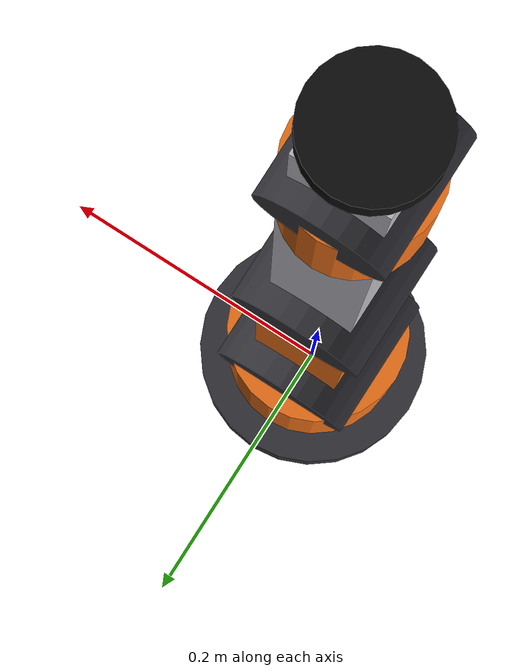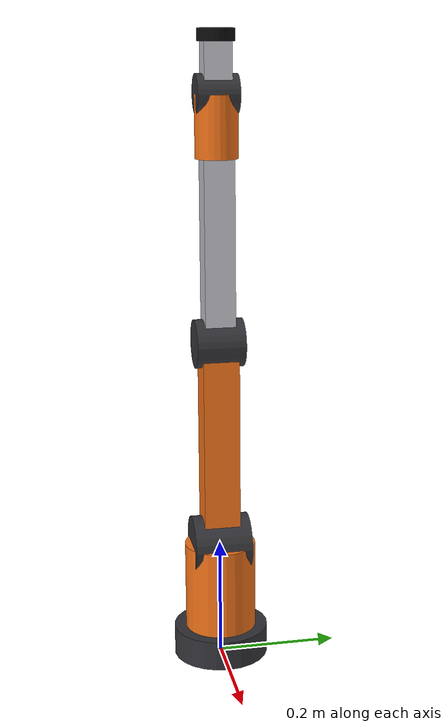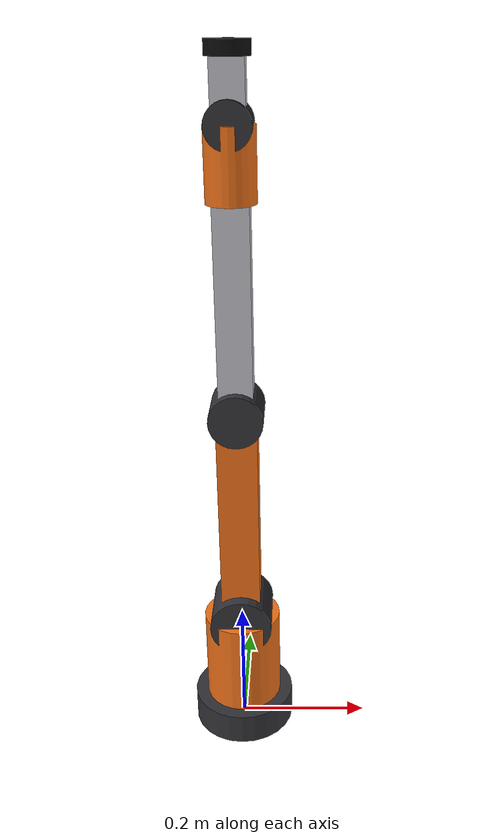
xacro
<?xml version="1.0"?>
<robot xmlns:xacro="http://www.ros.org/wiki/xacro" name="brazo">

  <!-- ===================== Argumentos ===================== -->
  <xacro:arg name="prefijo"               default=""/>
  <xacro:arg name="modo_hardware"         default="mock"/>
  <xacro:arg name="puerto_serie"          default="/dev/ttyUSB0"/>
  <xacro:arg name="baudios"               default="115200"/>
  <xacro:arg name="archivo_controladores" default=""/>

  <!-- ===================== Inclusión de las piezas ===================== -->
  <xacro:include filename="$(find brazo_description)/urdf/brazo_macro.xacro"/>
  <xacro:include filename="$(find brazo_description)/urdf/brazo.ros2_control.xacro"/>
  <xacro:include filename="$(find brazo_description)/urdf/brazo.gazebo.xacro"/>

  <!-- ===================== Mundo =====================
       Eslabón fijo de referencia. Gazebo y MoveIt lo usan como origen global. -->
  <link name="world"/>

  <!-- ===================== Brazo ===================== -->
  <xacro:brazo_rollbot prefijo="$(arg prefijo)" padre="world">
    <origin xyz="0 0 0" rpy="0 0 0"/>
  </xacro:brazo_rollbot>

  <!-- ===================== ros2_control ===================== -->
  <xacro:brazo_ros2_control
      prefijo="$(arg prefijo)"
      modo="$(arg modo_hardware)"
      puerto_serie="$(arg puerto_serie)"
      baudios="$(arg baudios)"/>

  <!-- ===================== Gazebo (solo si se simula) ===================== -->
  <xacro:if value="${'$(arg modo_hardware)' == 'gazebo'}">
    <xacro:brazo_gazebo prefijo="$(arg prefijo)"
                        archivo_controladores="$(arg archivo_controladores)"/>
  </xacro:if>

</robot>

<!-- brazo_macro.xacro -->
<robot xmlns:xacro="http://www.ros.org/wiki/xacro">

  <xacro:include filename="$(find brazo_description)/urdf/brazo_propiedades.xacro"/>
  <xacro:include filename="$(find brazo_description)/urdf/inercias.xacro"/>
  <xacro:include filename="$(find brazo_description)/urdf/materiales.xacro"/>

  <!--
    Macro auxiliar: dibuja un "cubo de motor" (cilindro tumbado en Y) en una
    articulación. Es solo estético; no afecta a la cinemática.
  -->
  <xacro:macro name="carcasa_motor" params="radio largo color">
    <visual>
      <origin xyz="0 0 0" rpy="${pi/2} 0 0"/>
      <geometry><cylinder radius="${radio}" length="${largo}"/></geometry>
      <material name="${color}"/>
    </visual>
  </xacro:macro>

  <xacro:macro name="brazo_rollbot" params="prefijo:='' padre *origen">

    <!-- ===================== Unión fija padre -> base ===================== -->
    <joint name="${prefijo}base_joint" type="fixed">
      <xacro:insert_block name="origen"/>
      <parent link="${padre}"/>
      <child link="${prefijo}base_link"/>
    </joint>

    <!-- ===================== BASE ===================== -->
    <link name="${prefijo}base_link">
      <visual>
        <origin xyz="0 0 ${base_altura/2}" rpy="0 0 0"/>
        <geometry><cylinder radius="${base_radio}" length="${base_altura}"/></geometry>
        <material name="gris_oscuro"/>
      </visual>
      <collision>
        <origin xyz="0 0 ${base_altura/2}" rpy="0 0 0"/>
        <geometry><cylinder radius="${base_radio}" length="${base_altura}"/></geometry>
      </collision>
      <xacro:inercia_cilindro masa="${base_masa}" radio="${base_radio}"
                              altura="${base_altura}" z="${base_altura/2}"/>
    </link>

    <!-- ===================== JOINT 1: giro de la torre (eje Z) ===================== -->
    <joint name="${prefijo}joint_1" type="revolute">
      <parent link="${prefijo}base_link"/>
      <child  link="${prefijo}link_1"/>
      <origin xyz="0 0 ${base_altura}" rpy="0 0 0"/>
      <axis xyz="0 0 1"/>
      <limit lower="${j1_min}" upper="${j1_max}" velocity="${vel_ejes_grandes}" effort="${esfuerzo_grande}"/>
      <dynamics damping="${amortiguamiento}" friction="${rozamiento}"/>
    </joint>

    <link name="${prefijo}link_1">
      <visual>
        <origin xyz="0 0 ${l1_altura/2}" rpy="0 0 0"/>
        <geometry><cylinder radius="${l1_radio}" length="${l1_altura}"/></geometry>
        <material name="naranja"/>
      </visual>
      <collision>
        <origin xyz="0 0 ${l1_altura/2}" rpy="0 0 0"/>
        <geometry><cylinder radius="${l1_radio}" length="${l1_altura}"/></geometry>
      </collision>
      <xacro:inercia_cilindro masa="${l1_masa}" radio="${l1_radio}"
                              altura="${l1_altura}" z="${l1_altura/2}"/>
    </link>

    <!-- ===================== JOINT 2: hombro (eje Y) ===================== -->
    <joint name="${prefijo}joint_2" type="revolute">
      <parent link="${prefijo}link_1"/>
      <child  link="${prefijo}link_2"/>
      <origin xyz="0 0 ${l1_altura}" rpy="0 0 0"/>
      <axis xyz="0 1 0"/>
      <limit lower="${j2_min}" upper="${j2_max}" velocity="${vel_ejes_grandes}" effort="${esfuerzo_grande}"/>
      <dynamics damping="${amortiguamiento}" friction="${rozamiento}"/>
    </joint>

    <link name="${prefijo}link_2">
      <!-- Carcasa del motor del hombro -->
      <xacro:carcasa_motor radio="${l2_ancho*0.8}" largo="${l2_ancho*1.6}" color="gris_oscuro"/>
      <visual>
        <origin xyz="0 0 ${l2_largo/2}" rpy="0 0 0"/>
        <geometry><box size="${l2_ancho} ${l2_ancho} ${l2_largo}"/></geometry>
        <material name="naranja"/>
      </visual>
      <collision>
        <origin xyz="0 0 ${l2_largo/2}" rpy="0 0 0"/>
        <geometry><box size="${l2_ancho} ${l2_ancho} ${l2_largo}"/></geometry>
      </collision>
      <xacro:inercia_caja masa="${l2_masa}" x="${l2_ancho}" y="${l2_ancho}"
                          z="${l2_largo}" oz="${l2_largo/2}"/>
    </link>

    <!-- ===================== JOINT 3: codo (eje Y) ===================== -->
    <joint name="${prefijo}joint_3" type="revolute">
      <parent link="${prefijo}link_2"/>
      <child  link="${prefijo}link_3"/>
      <origin xyz="0 0 ${l2_largo}" rpy="0 0 0"/>
      <axis xyz="0 1 0"/>
      <limit lower="${j3_min}" upper="${j3_max}" velocity="${vel_ejes_grandes}" effort="${esfuerzo_grande}"/>
      <dynamics damping="${amortiguamiento}" friction="${rozamiento}"/>
    </joint>

    <link name="${prefijo}link_3">
      <xacro:carcasa_motor radio="${l3_ancho*0.8}" largo="${l3_ancho*1.6}" color="gris_oscuro"/>
      <visual>
        <origin xyz="0 0 ${l3_largo/2}" rpy="0 0 0"/>
        <geometry><box size="${l3_ancho} ${l3_ancho} ${l3_largo}"/></geometry>
        <material name="gris_claro"/>
      </visual>
      <collision>
        <origin xyz="0 0 ${l3_largo/2}" rpy="0 0 0"/>
        <geometry><box size="${l3_ancho} ${l3_ancho} ${l3_largo}"/></geometry>
      </collision>
      <xacro:inercia_caja masa="${l3_masa}" x="${l3_ancho}" y="${l3_ancho}"
                          z="${l3_largo}" oz="${l3_largo/2}"/>
    </link>

    <!-- ===================== JOINT 4: giro de muñeca (eje Z) ===================== -->
    <joint name="${prefijo}joint_4" type="revolute">
      <parent link="${prefijo}link_3"/>
      <child  link="${prefijo}link_4"/>
      <origin xyz="0 0 ${l3_largo}" rpy="0 0 0"/>
      <axis xyz="0 0 1"/>
      <limit lower="${j4_min}" upper="${j4_max}" velocity="${vel_ejes_muneca}" effort="${esfuerzo_muneca}"/>
      <dynamics damping="${amortiguamiento}" friction="${rozamiento}"/>
    </joint>

    <link name="${prefijo}link_4">
      <visual>
        <origin xyz="0 0 ${l4_altura/2}" rpy="0 0 0"/>
        <geometry><cylinder radius="${l4_radio}" length="${l4_altura}"/></geometry>
        <material name="naranja"/>
      </visual>
      <collision>
        <origin xyz="0 0 ${l4_altura/2}" rpy="0 0 0"/>
        <geometry><cylinder radius="${l4_radio}" length="${l4_altura}"/></geometry>
      </collision>
      <xacro:inercia_cilindro masa="${l4_masa}" radio="${l4_radio}"
                              altura="${l4_altura}" z="${l4_altura/2}"/>
    </link>

    <!-- ===================== JOINT 5: cabeceo de muñeca (eje Y) ===================== -->
    <joint name="${prefijo}joint_5" type="revolute">
      <parent link="${prefijo}link_4"/>
      <child  link="${prefijo}link_5"/>
      <origin xyz="0 0 ${l4_altura}" rpy="0 0 0"/>
      <axis xyz="0 1 0"/>
      <limit lower="${j5_min}" upper="${j5_max}" velocity="${vel_ejes_muneca}" effort="${esfuerzo_muneca}"/>
      <dynamics damping="${amortiguamiento}" friction="${rozamiento}"/>
    </joint>

    <link name="${prefijo}link_5">
      <xacro:carcasa_motor radio="${l5_ancho*0.7}" largo="${l5_ancho*1.5}" color="gris_oscuro"/>
      <visual>
        <origin xyz="0 0 ${l5_largo/2}" rpy="0 0 0"/>
        <geometry><box size="${l5_ancho} ${l5_ancho} ${l5_largo}"/></geometry>
        <material name="gris_claro"/>
      </visual>
      <collision>
        <origin xyz="0 0 ${l5_largo/2}" rpy="0 0 0"/>
        <geometry><box size="${l5_ancho} ${l5_ancho} ${l5_largo}"/></geometry>
      </collision>
      <xacro:inercia_caja masa="${l5_masa}" x="${l5_ancho}" y="${l5_ancho}"
                          z="${l5_largo}" oz="${l5_largo/2}"/>
    </link>

    <!-- ===================== JOINT 6: brida (eje Z) ===================== -->
    <joint name="${prefijo}joint_6" type="revolute">
      <parent link="${prefijo}link_5"/>
      <child  link="${prefijo}link_6"/>
      <origin xyz="0 0 ${l5_largo}" rpy="0 0 0"/>
      <axis xyz="0 0 1"/>
      <limit lower="${j6_min}" upper="${j6_max}" velocity="${vel_ejes_muneca}" effort="${esfuerzo_muneca}"/>
      <dynamics damping="${amortiguamiento}" friction="${rozamiento}"/>
    </joint>

    <link name="${prefijo}link_6">
      <visual>
        <origin xyz="0 0 ${l6_altura/2}" rpy="0 0 0"/>
        <geometry><cylinder radius="${l6_radio}" length="${l6_altura}"/></geometry>
        <material name="negro"/>
      </visual>
      <collision>
        <origin xyz="0 0 ${l6_altura/2}" rpy="0 0 0"/>
        <geometry><cylinder radius="${l6_radio}" length="${l6_altura}"/></geometry>
      </collision>
      <xacro:inercia_cilindro masa="${l6_masa}" radio="${l6_radio}"
                              altura="${l6_altura}" z="${l6_altura/2}"/>
    </link>

    <joint name="${prefijo}tool0_joint" type="fixed">
      <parent link="${prefijo}link_6"/>
      <child  link="${prefijo}tool0"/>
      <origin xyz="0 0 ${l6_altura}" rpy="0 0 0"/>
    </joint>
    <link name="${prefijo}tool0"/>

  </xacro:macro>
</robot>

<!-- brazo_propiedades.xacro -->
<robot xmlns:xacro="http://www.ros.org/wiki/xacro">

  <!-- Constante PI ya viene definida en xacro como ${pi}. -->

  <!-- ===================== BASE (fija al suelo) ===================== -->
  <xacro:property name="base_radio"   value="0.08"/>
  <xacro:property name="base_altura"  value="0.05"/>
  <xacro:property name="base_masa"    value="3.0"/>

  <!-- ===================== ESLABÓN 1: torre giratoria (eje Z) ===================== -->
  <xacro:property name="l1_radio"     value="0.06"/>
  <xacro:property name="l1_altura"    value="0.15"/>
  <xacro:property name="l1_masa"      value="2.0"/>

  <!-- ===================== ESLABÓN 2: brazo (hombro, eje Y) ===================== -->
  <xacro:property name="l2_ancho"     value="0.06"/>
  <xacro:property name="l2_largo"     value="0.35"/>
  <xacro:property name="l2_masa"      value="2.5"/>

  <!-- ===================== ESLABÓN 3: antebrazo (codo, eje Y) ===================== -->
  <xacro:property name="l3_ancho"     value="0.05"/>
  <xacro:property name="l3_largo"     value="0.30"/>
  <xacro:property name="l3_masa"      value="1.5"/>

  <!-- ===================== ESLABÓN 4: giro de muñeca (eje Z) ===================== -->
  <xacro:property name="l4_radio"     value="0.035"/>
  <xacro:property name="l4_altura"    value="0.10"/>
  <xacro:property name="l4_masa"      value="0.6"/>

  <!-- ===================== ESLABÓN 5: cabeceo de muñeca (eje Y) ===================== -->
  <xacro:property name="l5_ancho"     value="0.045"/>
  <xacro:property name="l5_largo"     value="0.08"/>
  <xacro:property name="l5_masa"      value="0.4"/>

  <!-- ===================== ESLABÓN 6: brida de herramienta (eje Z) ===================== -->
  <xacro:property name="l6_radio"     value="0.03"/>
  <xacro:property name="l6_altura"    value="0.02"/>
  <xacro:property name="l6_masa"      value="0.2"/>

  <xacro:property name="j1_min" value="${-170 * pi / 180}"/>
  <xacro:property name="j1_max" value="${ 170 * pi / 180}"/>
  <xacro:property name="j2_min" value="${ -90 * pi / 180}"/>
  <xacro:property name="j2_max" value="${  90 * pi / 180}"/>
  <xacro:property name="j3_min" value="${-135 * pi / 180}"/>
  <xacro:property name="j3_max" value="${ 135 * pi / 180}"/>
  <xacro:property name="j4_min" value="${-170 * pi / 180}"/>
  <xacro:property name="j4_max" value="${ 170 * pi / 180}"/>
  <xacro:property name="j5_min" value="${-115 * pi / 180}"/>
  <xacro:property name="j5_max" value="${ 115 * pi / 180}"/>
  <xacro:property name="j6_min" value="${-pi}"/>
  <xacro:property name="j6_max" value="${ pi}"/>

  <xacro:property name="vel_ejes_grandes"   value="1.0"/>   <!-- j1, j2, j3 (NEMA 34 / 23 con reductora) -->
  <xacro:property name="vel_ejes_muneca"    value="1.5"/>
  <xacro:property name="esfuerzo_grande"    value="80.0"/>
  <xacro:property name="esfuerzo_muneca"    value="15.0"/>

  <!-- Amortiguamiento y rozamiento (solo afectan a la simulación en Gazebo) -->
  <xacro:property name="amortiguamiento" value="0.5"/>
  <xacro:property name="rozamiento"      value="0.1"/>

</robot>

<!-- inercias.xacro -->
<robot xmlns:xacro="http://www.ros.org/wiki/xacro">

  <!-- Cilindro macizo con el eje de simetría en Z -->
  <xacro:macro name="inercia_cilindro" params="masa radio altura z:=0">
    <inertial>
      <origin xyz="0 0 ${z}" rpy="0 0 0"/>
      <mass value="${masa}"/>
      <inertia
        ixx="${masa * (3 * radio * radio + altura * altura) / 12.0}" ixy="0" ixz="0"
        iyy="${masa * (3 * radio * radio + altura * altura) / 12.0}" iyz="0"
        izz="${masa * radio * radio / 2.0}"/>
    </inertial>
  </xacro:macro>

  <!-- Caja maciza de lados x, y, z -->
  <xacro:macro name="inercia_caja" params="masa x y z oz:=0">
    <inertial>
      <origin xyz="0 0 ${oz}" rpy="0 0 0"/>
      <mass value="${masa}"/>
      <inertia
        ixx="${masa * (y * y + z * z) / 12.0}" ixy="0" ixz="0"
        iyy="${masa * (x * x + z * z) / 12.0}" iyz="0"
        izz="${masa * (x * x + y * y) / 12.0}"/>
    </inertial>
  </xacro:macro>

</robot>

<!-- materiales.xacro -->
<!--
  materiales.xacro — Colores que usa RViz para pintar cada eslabón.
  (Gazebo usa sus propios materiales; ver brazo.gazebo.xacro)
  Formato rgba: rojo verde azul transparencia, valores de 0 a 1.
-->
<robot xmlns:xacro="http://www.ros.org/wiki/xacro">
  <material name="gris_oscuro"><color rgba="0.20 0.20 0.22 1.0"/></material>
  <material name="naranja">    <color rgba="0.95 0.45 0.10 1.0"/></material>
  <material name="gris_claro"> <color rgba="0.75 0.75 0.78 1.0"/></material>
  <material name="negro">      <color rgba="0.05 0.05 0.05 1.0"/></material>
</robot>
